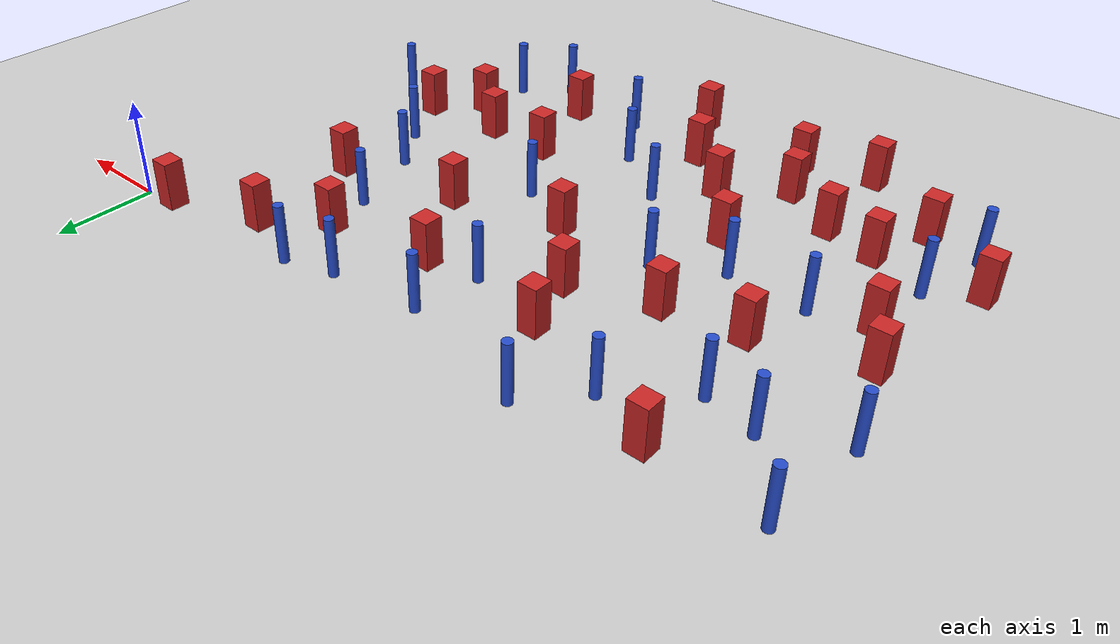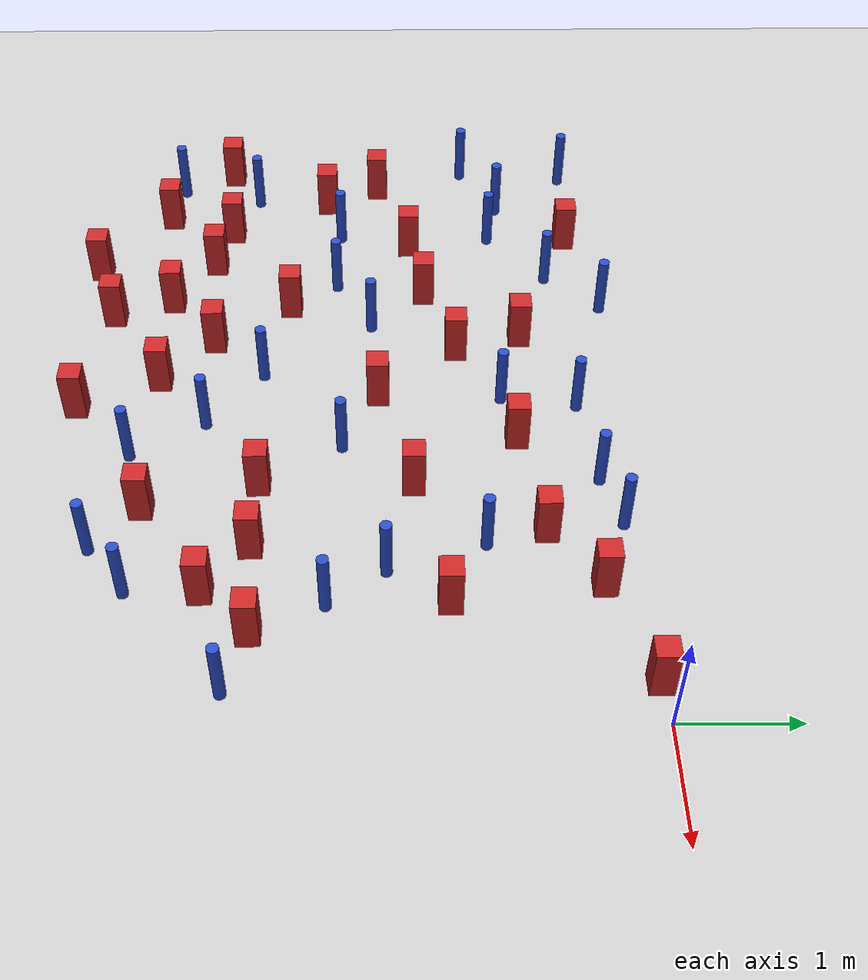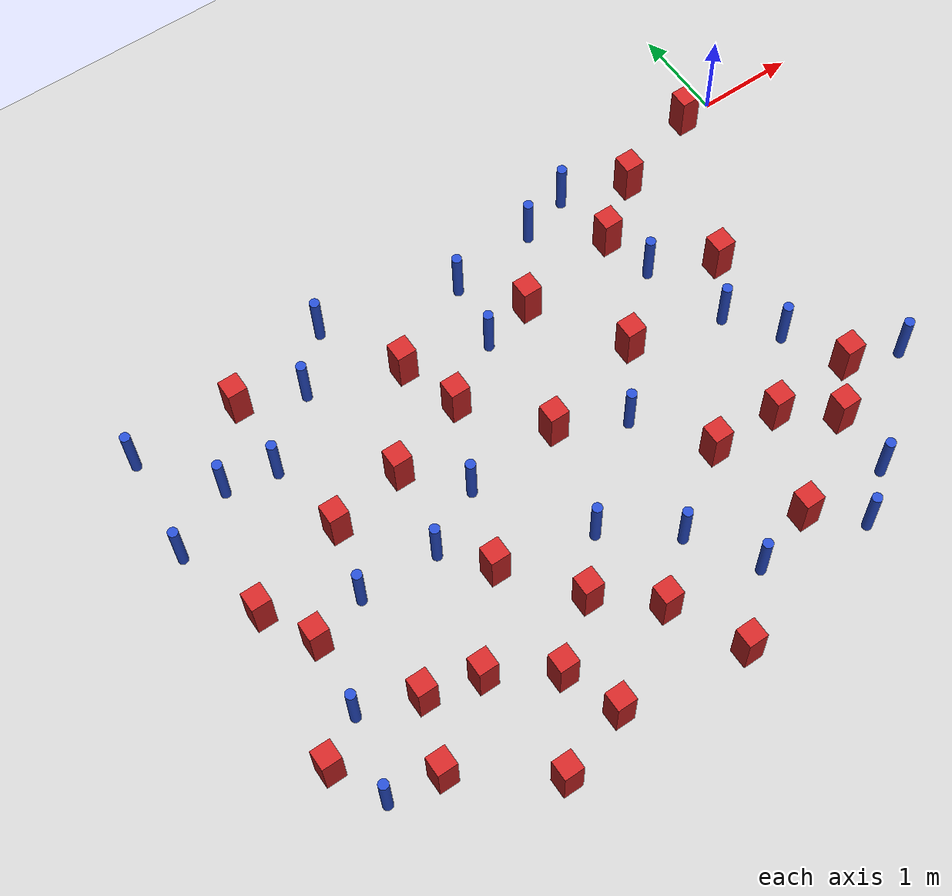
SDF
<sdf version="1.6">
 <world name="default">
  <model name="ground_plane">
   <static>1</static>
   <link name="link">
    <collision name="collision">
     <geometry><plane><normal>0 0 1</normal><size>100 100</size></plane></geometry>
     <surface><friction><ode><mu>100</mu><mu2>50</mu2></ode></friction></surface>
    </collision>
    <visual name="visual">
     <cast_shadows>0</cast_shadows>
     <geometry><plane><normal>0 0 1</normal><size>100 100</size></plane></geometry>
     <material>
      <ambient>1.0 1.0 1.0 1.0</ambient>
      <diffuse>0.8 0.8 0.8 1.0</diffuse>
      <specular>0.01 0.01 0.01 1.000000</specular>
     </material>
    </visual>
   </link>
  </model>
  <model name="square_post_obstacle4">
   <static>true</static>
   <pose>-0.353924351522 -0.0484012104252 8.22691968438e-08 7.2212513382e-06 -7.54495500217e-07 2.29674213826e-05</pose>
   <link name="link">
    <pose>0 0 0.25 0 -0 0</pose>
    <inertial>
     <mass>100</mass>
     <inertia>
      <ixx>0.166667</ixx>
      <ixy>0</ixy>
      <ixz>0</ixz>
      <iyy>0.166667</iyy>
      <iyz>0</iyz>
      <izz>0.166667</izz>
     </inertia>
    </inertial>
    <collision name="collision"><geometry><box><size>.2 .2 .5</size></box></geometry></collision>
    <visual name="visual">
     <geometry><box><size>.2 .2 .5</size></box></geometry>
     <material>
      <script><name>Gazebo/Red</name><uri>file://media/materials/scripts/gazebo.material</uri></script>
     </material>
    </visual>
   </link>
  </model>
  <model name="pole_obstacle7">
   <static>true</static>
   <pose>-5.84208865774 -1.11125612981 2.88873142074e-08 -9.90536689445e-09 4.60219948999e-07 -1.20965994956e-07</pose>
   <link name="link">
    <pose>0 0 0.3 0 -0 0</pose>
    <inertial>
     <mass>1</mass>
     <inertia><ixx>0.145833</ixx><ixy>0</ixy><ixz>0</ixz><iyy>0.145833</iyy><iyz>0</iyz><izz>0.125</izz></inertia>
    </inertial>
    <collision name="collision">
     <geometry><cylinder><radius>0.05</radius><length>.6</length></cylinder></geometry>
    </collision>
    <visual name="visual">
     <geometry><cylinder><radius>0.05</radius><length>.6</length></cylinder></geometry>
     <material>
      <script><name>Gazebo/Blue</name><uri>file://media/materials/scripts/gazebo.material</uri></script>
     </material>
    </visual>
   </link>
  </model>
  <model name="pole_obstacle10">
   <static>true</static>
   <pose>-1.11642473633 -2.62495609921 2.88873142074e-08 -9.90536689791e-09 4.6021994899e-07 -1.20965994959e-07</pose>
   <link name="link">
    <pose>0 0 0.3 0 -0 0</pose>
    <inertial>
     <mass>1</mass>
     <inertia><ixx>0.145833</ixx><ixy>0</ixy><ixz>0</ixz><iyy>0.145833</iyy><iyz>0</iyz><izz>0.125</izz></inertia>
    </inertial>
    <collision name="collision">
     <geometry><cylinder><radius>0.05</radius><length>.6</length></cylinder></geometry>
    </collision>
    <visual name="visual">
     <geometry><cylinder><radius>0.05</radius><length>.6</length></cylinder></geometry>
     <material>
      <script><name>Gazebo/Blue</name><uri>file://media/materials/scripts/gazebo.material</uri></script>
     </material>
    </visual>
   </link>
  </model>
  <model name="square_post_obstacle8">
   <static>true</static>
   <pose>-5.93874351744 -3.71497561347 8.22691968438e-08 7.2212513382e-06 -7.54495500217e-07 2.29674213826e-05</pose>
   <link name="link">
    <pose>0 0 0.25 0 -0 0</pose>
    <inertial>
     <mass>100</mass>
     <inertia>
      <ixx>0.166667</ixx>
      <ixy>0</ixy>
      <ixz>0</ixz>
      <iyy>0.166667</iyy>
      <iyz>0</iyz>
      <izz>0.166667</izz>
     </inertia>
    </inertial>
    <collision name="collision"><geometry><box><size>.2 .2 .5</size></box></geometry></collision>
    <visual name="visual">
     <geometry><box><size>.2 .2 .5</size></box></geometry>
     <material>
      <script><name>Gazebo/Red</name><uri>file://media/materials/scripts/gazebo.material</uri></script>
     </material>
    </visual>
   </link>
  </model>
  <model name="square_post_obstacle16">
   <static>true</static>
   <pose>-1.29657354316 -0.37013746028 8.22691968438e-08 7.2212513382e-06 -7.54495500217e-07 2.29674213826e-05</pose>
   <link name="link">
    <pose>0 0 0.25 0 -0 0</pose>
    <inertial>
     <mass>100</mass>
     <inertia>
      <ixx>0.166667</ixx>
      <ixy>0</ixy>
      <ixz>0</ixz>
      <iyy>0.166667</iyy>
      <iyz>0</iyz>
      <izz>0.166667</izz>
     </inertia>
    </inertial>
    <collision name="collision"><geometry><box><size>.2 .2 .5</size></box></geometry></collision>
    <visual name="visual">
     <geometry><box><size>.2 .2 .5</size></box></geometry>
     <material>
      <script><name>Gazebo/Red</name><uri>file://media/materials/scripts/gazebo.material</uri></script>
     </material>
    </visual>
   </link>
  </model>
  <model name="square_post_obstacle17">
   <static>true</static>
   <pose>-3.71975612053 -4.23128856117 8.22691968438e-08 7.2212513382e-06 -7.54495500217e-07 2.29674213826e-05</pose>
   <link name="link">
    <pose>0 0 0.25 0 -0 0</pose>
    <inertial>
     <mass>100</mass>
     <inertia>
      <ixx>0.166667</ixx>
      <ixy>0</ixy>
      <ixz>0</ixz>
      <iyy>0.166667</iyy>
      <iyz>0</iyz>
      <izz>0.166667</izz>
     </inertia>
    </inertial>
    <collision name="collision"><geometry><box><size>.2 .2 .5</size></box></geometry></collision>
    <visual name="visual">
     <geometry><box><size>.2 .2 .5</size></box></geometry>
     <material>
      <script><name>Gazebo/Red</name><uri>file://media/materials/scripts/gazebo.material</uri></script>
     </material>
    </visual>
   </link>
  </model>
  <model name="square_post_obstacle20">
   <static>true</static>
   <pose>-6.42483003444 -2.76336271991 8.22691968438e-08 7.2212513382e-06 -7.54495500217e-07 2.29674213826e-05</pose>
   <link name="link">
    <pose>0 0 0.25 0 -0 0</pose>
    <inertial>
     <mass>100</mass>
     <inertia>
      <ixx>0.166667</ixx>
      <ixy>0</ixy>
      <ixz>0</ixz>
      <iyy>0.166667</iyy>
      <iyz>0</iyz>
      <izz>0.166667</izz>
     </inertia>
    </inertial>
    <collision name="collision"><geometry><box><size>.2 .2 .5</size></box></geometry></collision>
    <visual name="visual">
     <geometry><box><size>.2 .2 .5</size></box></geometry>
     <material>
      <script><name>Gazebo/Red</name><uri>file://media/materials/scripts/gazebo.material</uri></script>
     </material>
    </visual>
   </link>
  </model>
  <model name="square_post_obstacle26">
   <static>true</static>
   <pose>-4.82726771873 -4.22227298662 8.22691968438e-08 7.2212513382e-06 -7.54495500217e-07 2.29674213826e-05</pose>
   <link name="link">
    <pose>0 0 0.25 0 -0 0</pose>
    <inertial>
     <mass>100</mass>
     <inertia>
      <ixx>0.166667</ixx>
      <ixy>0</ixy>
      <ixz>0</ixz>
      <iyy>0.166667</iyy>
      <iyz>0</iyz>
      <izz>0.166667</izz>
     </inertia>
    </inertial>
    <collision name="collision"><geometry><box><size>.2 .2 .5</size></box></geometry></collision>
    <visual name="visual">
     <geometry><box><size>.2 .2 .5</size></box></geometry>
     <material>
      <script><name>Gazebo/Red</name><uri>file://media/materials/scripts/gazebo.material</uri></script>
     </material>
    </visual>
   </link>
  </model>
  <model name="pole_obstacle45">
   <static>true</static>
   <pose>-2.77632483349 -4.4089246093 2.88873142074e-08 -9.90536689859e-09 4.60219948989e-07 -1.20965994961e-07</pose>
   <link name="link">
    <pose>0 0 0.3 0 -0 0</pose>
    <inertial>
     <mass>1</mass>
     <inertia><ixx>0.145833</ixx><ixy>0</ixy><ixz>0</ixz><iyy>0.145833</iyy><iyz>0</iyz><izz>0.125</izz></inertia>
    </inertial>
    <collision name="collision">
     <geometry><cylinder><radius>0.05</radius><length>.6</length></cylinder></geometry>
    </collision>
    <visual name="visual">
     <geometry><cylinder><radius>0.05</radius><length>.6</length></cylinder></geometry>
     <material>
      <script><name>Gazebo/Blue</name><uri>file://media/materials/scripts/gazebo.material</uri></script>
     </material>
    </visual>
   </link>
  </model>
  <model name="square_post_obstacle38">
   <static>true</static>
   <pose>-2.40083203165 -1.90359763674 8.22691968438e-08 7.22125133819e-06 -7.54495500217e-07 2.29674213826e-05</pose>
   <link name="link">
    <pose>0 0 0.25 0 -0 0</pose>
    <inertial>
     <mass>100</mass>
     <inertia>
      <ixx>0.166667</ixx>
      <ixy>0</ixy>
      <ixz>0</ixz>
      <iyy>0.166667</iyy>
      <iyz>0</iyz>
      <izz>0.166667</izz>
     </inertia>
    </inertial>
    <collision name="collision"><geometry><box><size>.2 .2 .5</size></box></geometry></collision>
    <visual name="visual">
     <geometry><box><size>.2 .2 .5</size></box></geometry>
     <material>
      <script><name>Gazebo/Red</name><uri>file://media/materials/scripts/gazebo.material</uri></script>
     </material>
    </visual>
   </link>
  </model>
  <model name="square_post_obstacle42">
   <static>true</static>
   <pose>-2.40776329076 -3.24105631658 8.22691968438e-08 7.2212513382e-06 -7.54495500217e-07 2.29674213826e-05</pose>
   <link name="link">
    <pose>0 0 0.25 0 -0 0</pose>
    <inertial>
     <mass>100</mass>
     <inertia>
      <ixx>0.166667</ixx>
      <ixy>0</ixy>
      <ixz>0</ixz>
      <iyy>0.166667</iyy>
      <iyz>0</iyz>
      <izz>0.166667</izz>
     </inertia>
    </inertial>
    <collision name="collision"><geometry><box><size>.2 .2 .5</size></box></geometry></collision>
    <visual name="visual">
     <geometry><box><size>.2 .2 .5</size></box></geometry>
     <material>
      <script><name>Gazebo/Red</name><uri>file://media/materials/scripts/gazebo.material</uri></script>
     </material>
    </visual>
   </link>
  </model>
  <model name="square_post_obstacle46">
   <static>true</static>
   <pose>-6.93474929839 -3.78646989536 8.22691968438e-08 7.2212513382e-06 -7.54495500217e-07 2.29674213826e-05</pose>
   <link name="link">
    <pose>0 0 0.25 0 -0 0</pose>
    <inertial>
     <mass>100</mass>
     <inertia>
      <ixx>0.166667</ixx>
      <ixy>0</ixy>
      <ixz>0</ixz>
      <iyy>0.166667</iyy>
      <iyz>0</iyz>
      <izz>0.166667</izz>
     </inertia>
    </inertial>
    <collision name="collision"><geometry><box><size>.2 .2 .5</size></box></geometry></collision>
    <visual name="visual">
     <geometry><box><size>.2 .2 .5</size></box></geometry>
     <material>
      <script><name>Gazebo/Red</name><uri>file://media/materials/scripts/gazebo.material</uri></script>
     </material>
    </visual>
   </link>
  </model>
  <model name="pole_obstacle64">
   <static>true</static>
   <pose>-3.16671147256 -3.76745378342 2.88873142074e-08 -9.90536690232e-09 4.6021994898e-07 -1.20965994968e-07</pose>
   <link name="link">
    <pose>0 0 0.3 0 -0 0</pose>
    <inertial>
     <mass>1</mass>
     <inertia><ixx>0.145833</ixx><ixy>0</ixy><ixz>0</ixz><iyy>0.145833</iyy><iyz>0</iyz><izz>0.125</izz></inertia>
    </inertial>
    <collision name="collision">
     <geometry><cylinder><radius>0.05</radius><length>.6</length></cylinder></geometry>
    </collision>
    <visual name="visual">
     <geometry><cylinder><radius>0.05</radius><length>.6</length></cylinder></geometry>
     <material>
      <script><name>Gazebo/Blue</name><uri>file://media/materials/scripts/gazebo.material</uri></script>
     </material>
    </visual>
   </link>
  </model>
  <model name="square_post_obstacle58">
   <static>true</static>
   <pose>-5.40928146201 -3.85195314109 8.22691968438e-08 7.2212513382e-06 -7.54495500217e-07 2.29674213826e-05</pose>
   <link name="link">
    <pose>0 0 0.25 0 -0 0</pose>
    <inertial>
     <mass>100</mass>
     <inertia>
      <ixx>0.166667</ixx>
      <ixy>0</ixy>
      <ixz>0</ixz>
      <iyy>0.166667</iyy>
      <iyz>0</iyz>
      <izz>0.166667</izz>
     </inertia>
    </inertial>
    <collision name="collision"><geometry><box><size>.2 .2 .5</size></box></geometry></collision>
    <visual name="visual">
     <geometry><box><size>.2 .2 .5</size></box></geometry>
     <material>
      <script><name>Gazebo/Red</name><uri>file://media/materials/scripts/gazebo.material</uri></script>
     </material>
    </visual>
   </link>
  </model>
  <model name="pole_obstacle75">
   <static>true</static>
   <pose>-2.86983667224 -2.53253403333 2.88873142074e-08 -9.90536690232e-09 4.6021994898e-07 -1.20965994968e-07</pose>
   <link name="link">
    <pose>0 0 0.3 0 -0 0</pose>
    <inertial>
     <mass>1</mass>
     <inertia><ixx>0.145833</ixx><ixy>0</ixy><ixz>0</ixz><iyy>0.145833</iyy><iyz>0</iyz><izz>0.125</izz></inertia>
    </inertial>
    <collision name="collision">
     <geometry><cylinder><radius>0.05</radius><length>.6</length></cylinder></geometry>
    </collision>
    <visual name="visual">
     <geometry><cylinder><radius>0.05</radius><length>.6</length></cylinder></geometry>
     <material>
      <script><name>Gazebo/Blue</name><uri>file://media/materials/scripts/gazebo.material</uri></script>
     </material>
    </visual>
   </link>
  </model>
  <model name="square_post_obstacle68">
   <static>true</static>
   <pose>-5.33740428314 -5.00084969941 8.22691968438e-08 7.22125133819e-06 -7.54495500217e-07 2.29674213826e-05</pose>
   <link name="link">
    <pose>0 0 0.25 0 -0 0</pose>
    <inertial>
     <mass>100</mass>
     <inertia>
      <ixx>0.166667</ixx>
      <ixy>0</ixy>
      <ixz>0</ixz>
      <iyy>0.166667</iyy>
      <iyz>0</iyz>
      <izz>0.166667</izz>
     </inertia>
    </inertial>
    <collision name="collision"><geometry><box><size>.2 .2 .5</size></box></geometry></collision>
    <visual name="visual">
     <geometry><box><size>.2 .2 .5</size></box></geometry>
     <material>
      <script><name>Gazebo/Red</name><uri>file://media/materials/scripts/gazebo.material</uri></script>
     </material>
    </visual>
   </link>
  </model>
  <model name="pole_obstacle85">
   <static>true</static>
   <pose>-1.45981812008 -2.13649856728 2.88873142074e-08 -9.90536689791e-09 4.6021994899e-07 -1.20965994959e-07</pose>
   <link name="link">
    <pose>0 0 0.3 0 -0 0</pose>
    <inertial>
     <mass>1</mass>
     <inertia><ixx>0.145833</ixx><ixy>0</ixy><ixz>0</ixz><iyy>0.145833</iyy><iyz>0</iyz><izz>0.125</izz></inertia>
    </inertial>
    <collision name="collision">
     <geometry><cylinder><radius>0.05</radius><length>.6</length></cylinder></geometry>
    </collision>
    <visual name="visual">
     <geometry><cylinder><radius>0.05</radius><length>.6</length></cylinder></geometry>
     <material>
      <script><name>Gazebo/Blue</name><uri>file://media/materials/scripts/gazebo.material</uri></script>
     </material>
    </visual>
   </link>
  </model>
  <model name="pole_obstacle90">
   <static>true</static>
   <pose>-1.25688502942 -4.26383190639 2.88873142074e-08 -9.90536689852e-09 4.60219948989e-07 -1.2096599496e-07</pose>
   <link name="link">
    <pose>0 0 0.3 0 -0 0</pose>
    <inertial>
     <mass>1</mass>
     <inertia><ixx>0.145833</ixx><ixy>0</ixy><ixz>0</ixz><iyy>0.145833</iyy><iyz>0</iyz><izz>0.125</izz></inertia>
    </inertial>
    <collision name="collision">
     <geometry><cylinder><radius>0.05</radius><length>.6</length></cylinder></geometry>
    </collision>
    <visual name="visual">
     <geometry><cylinder><radius>0.05</radius><length>.6</length></cylinder></geometry>
     <material>
      <script><name>Gazebo/Blue</name><uri>file://media/materials/scripts/gazebo.material</uri></script>
     </material>
    </visual>
   </link>
  </model>
  <model name="square_post_obstacle82">
   <static>true</static>
   <pose>-1.12843798627 -1.62352066586 8.22691968438e-08 7.2212513382e-06 -7.54495500217e-07 2.29674213826e-05</pose>
   <link name="link">
    <pose>0 0 0.25 0 -0 0</pose>
    <inertial>
     <mass>100</mass>
     <inertia>
      <ixx>0.166667</ixx>
      <ixy>0</ixy>
      <ixz>0</ixz>
      <iyy>0.166667</iyy>
      <iyz>0</iyz>
      <izz>0.166667</izz>
     </inertia>
    </inertial>
    <collision name="collision"><geometry><box><size>.2 .2 .5</size></box></geometry></collision>
    <visual name="visual">
     <geometry><box><size>.2 .2 .5</size></box></geometry>
     <material>
      <script><name>Gazebo/Red</name><uri>file://media/materials/scripts/gazebo.material</uri></script>
     </material>
    </visual>
   </link>
  </model>
  <model name="square_post_obstacle89">
   <static>true</static>
   <pose>-1.23962064549 -3.63579727725 8.22691968438e-08 7.2212513382e-06 -7.54495500217e-07 2.29674213826e-05</pose>
   <link name="link">
    <pose>0 0 0.25 0 -0 0</pose>
    <inertial>
     <mass>100</mass>
     <inertia>
      <ixx>0.166667</ixx>
      <ixy>0</ixy>
      <ixz>0</ixz>
      <iyy>0.166667</iyy>
      <iyz>0</iyz>
      <izz>0.166667</izz>
     </inertia>
    </inertial>
    <collision name="collision"><geometry><box><size>.2 .2 .5</size></box></geometry></collision>
    <visual name="visual">
     <geometry><box><size>.2 .2 .5</size></box></geometry>
     <material>
      <script><name>Gazebo/Red</name><uri>file://media/materials/scripts/gazebo.material</uri></script>
     </material>
    </visual>
   </link>
  </model>
  <model name="pole_obstacle105">
   <static>true</static>
   <pose>-1.95211503798 -0.137079951747 2.88873142074e-08 -9.90536689886e-09 4.60219948988e-07 -1.20965994961e-07</pose>
   <link name="link">
    <pose>0 0 0.3 0 -0 0</pose>
    <inertial>
     <mass>1</mass>
     <inertia><ixx>0.145833</ixx><ixy>0</ixy><ixz>0</ixz><iyy>0.145833</iyy><iyz>0</iyz><izz>0.125</izz></inertia>
    </inertial>
    <collision name="collision">
     <geometry><cylinder><radius>0.05</radius><length>.6</length></cylinder></geometry>
    </collision>
    <visual name="visual">
     <geometry><cylinder><radius>0.05</radius><length>.6</length></cylinder></geometry>
     <material>
      <script><name>Gazebo/Blue</name><uri>file://media/materials/scripts/gazebo.material</uri></script>
     </material>
    </visual>
   </link>
  </model>
  <model name="pole_obstacle113">
   <static>true</static>
   <pose>-3.79943890474 -3.28116938728 2.88873142074e-08 -9.90536690232e-09 4.6021994898e-07 -1.20965994968e-07</pose>
   <link name="link">
    <pose>0 0 0.3 0 -0 0</pose>
    <inertial>
     <mass>1</mass>
     <inertia><ixx>0.145833</ixx><ixy>0</ixy><ixz>0</ixz><iyy>0.145833</iyy><iyz>0</iyz><izz>0.125</izz></inertia>
    </inertial>
    <collision name="collision">
     <geometry><cylinder><radius>0.05</radius><length>.6</length></cylinder></geometry>
    </collision>
    <visual name="visual">
     <geometry><cylinder><radius>0.05</radius><length>.6</length></cylinder></geometry>
     <material>
      <script><name>Gazebo/Blue</name><uri>file://media/materials/scripts/gazebo.material</uri></script>
     </material>
    </visual>
   </link>
  </model>
  <model name="square_post_obstacle111">
   <static>true</static>
   <pose>-2.95153687948 -0.981113258995 8.22691968438e-08 7.2212513382e-06 -7.54495500217e-07 2.29674213826e-05</pose>
   <link name="link">
    <pose>0 0 0.25 0 -0 0</pose>
    <inertial>
     <mass>100</mass>
     <inertia>
      <ixx>0.166667</ixx>
      <ixy>0</ixy>
      <ixz>0</ixz>
      <iyy>0.166667</iyy>
      <iyz>0</iyz>
      <izz>0.166667</izz>
     </inertia>
    </inertial>
    <collision name="collision"><geometry><box><size>.2 .2 .5</size></box></geometry></collision>
    <visual name="visual">
     <geometry><box><size>.2 .2 .5</size></box></geometry>
     <material>
      <script><name>Gazebo/Red</name><uri>file://media/materials/scripts/gazebo.material</uri></script>
     </material>
    </visual>
   </link>
  </model>
  <model name="square_post_obstacle117">
   <static>true</static>
   <pose>-0.831896689434 -3.21982725169 8.22691968438e-08 7.2212513382e-06 -7.54495500217e-07 2.29674213826e-05</pose>
   <link name="link">
    <pose>0 0 0.25 0 -0 0</pose>
    <inertial>
     <mass>100</mass>
     <inertia>
      <ixx>0.166667</ixx>
      <ixy>0</ixy>
      <ixz>0</ixz>
      <iyy>0.166667</iyy>
      <iyz>0</iyz>
      <izz>0.166667</izz>
     </inertia>
    </inertial>
    <collision name="collision"><geometry><box><size>.2 .2 .5</size></box></geometry></collision>
    <visual name="visual">
     <geometry><box><size>.2 .2 .5</size></box></geometry>
     <material>
      <script><name>Gazebo/Red</name><uri>file://media/materials/scripts/gazebo.material</uri></script>
     </material>
    </visual>
   </link>
  </model>
  <model name="pole_obstacle127">
   <static>true</static>
   <pose>-6.98928567473 -1.35368398232 2.88873142074e-08 -9.90536689445e-09 4.60219948999e-07 -1.20965994956e-07</pose>
   <link name="link">
    <pose>0 0 0.3 0 -0 0</pose>
    <inertial>
     <mass>1</mass>
     <inertia><ixx>0.145833</ixx><ixy>0</ixy><ixz>0</ixz><iyy>0.145833</iyy><iyz>0</iyz><izz>0.125</izz></inertia>
    </inertial>
    <collision name="collision">
     <geometry><cylinder><radius>0.05</radius><length>.6</length></cylinder></geometry>
    </collision>
    <visual name="visual">
     <geometry><cylinder><radius>0.05</radius><length>.6</length></cylinder></geometry>
     <material>
      <script><name>Gazebo/Blue</name><uri>file://media/materials/scripts/gazebo.material</uri></script>
     </material>
    </visual>
   </link>
  </model>
  <model name="square_post_obstacle126">
   <static>true</static>
   <pose>-1.71155157956 -3.26330077604 8.22691968438e-08 7.2212513382e-06 -7.54495500217e-07 2.29674213826e-05</pose>
   <link name="link">
    <pose>0 0 0.25 0 -0 0</pose>
    <inertial>
     <mass>100</mass>
     <inertia>
      <ixx>0.166667</ixx>
      <ixy>0</ixy>
      <ixz>0</ixz>
      <iyy>0.166667</iyy>
      <iyz>0</iyz>
      <izz>0.166667</izz>
     </inertia>
    </inertial>
    <collision name="collision"><geometry><box><size>.2 .2 .5</size></box></geometry></collision>
    <visual name="visual">
     <geometry><box><size>.2 .2 .5</size></box></geometry>
     <material>
      <script><name>Gazebo/Red</name><uri>file://media/materials/scripts/gazebo.material</uri></script>
     </material>
    </visual>
   </link>
  </model>
  <model name="pole_obstacle132">
   <static>true</static>
   <pose>-6.50206991924 -3.49347418676 2.88873142074e-08 -9.90536690245e-09 4.6021994898e-07 -1.20965994966e-07</pose>
   <link name="link">
    <pose>0 0 0.3 0 -0 0</pose>
    <inertial>
     <mass>1</mass>
     <inertia><ixx>0.145833</ixx><ixy>0</ixy><ixz>0</ixz><iyy>0.145833</iyy><iyz>0</iyz><izz>0.125</izz></inertia>
    </inertial>
    <collision name="collision">
     <geometry><cylinder><radius>0.05</radius><length>.6</length></cylinder></geometry>
    </collision>
    <visual name="visual">
     <geometry><cylinder><radius>0.05</radius><length>.6</length></cylinder></geometry>
     <material>
      <script><name>Gazebo/Blue</name><uri>file://media/materials/scripts/gazebo.material</uri></script>
     </material>
    </visual>
   </link>
  </model>
  <model name="pole_obstacle135">
   <static>true</static>
   <pose>-3.47546707701 -1.09512702284 2.88873142074e-08 -9.90536689395e-09 4.60219949e-07 -1.20965994953e-07</pose>
   <link name="link">
    <pose>0 0 0.3 0 -0 0</pose>
    <inertial>
     <mass>1</mass>
     <inertia><ixx>0.145833</ixx><ixy>0</ixy><ixz>0</ixz><iyy>0.145833</iyy><iyz>0</iyz><izz>0.125</izz></inertia>
    </inertial>
    <collision name="collision">
     <geometry><cylinder><radius>0.05</radius><length>.6</length></cylinder></geometry>
    </collision>
    <visual name="visual">
     <geometry><cylinder><radius>0.05</radius><length>.6</length></cylinder></geometry>
     <material>
      <script><name>Gazebo/Blue</name><uri>file://media/materials/scripts/gazebo.material</uri></script>
     </material>
    </visual>
   </link>
  </model>
  <model name="pole_obstacle138">
   <static>true</static>
   <pose>-1.73772776098 -1.30413992142 2.88873142074e-08 -9.90536689672e-09 4.60219948993e-07 -1.20965994959e-07</pose>
   <link name="link">
    <pose>0 0 0.3 0 -0 0</pose>
    <inertial>
     <mass>1</mass>
     <inertia><ixx>0.145833</ixx><ixy>0</ixy><ixz>0</ixz><iyy>0.145833</iyy><iyz>0</iyz><izz>0.125</izz></inertia>
    </inertial>
    <collision name="collision">
     <geometry><cylinder><radius>0.05</radius><length>.6</length></cylinder></geometry>
    </collision>
    <visual name="visual">
     <geometry><cylinder><radius>0.05</radius><length>.6</length></cylinder></geometry>
     <material>
      <script><name>Gazebo/Blue</name><uri>file://media/materials/scripts/gazebo.material</uri></script>
     </material>
    </visual>
   </link>
  </model>
  <model name="square_post_obstacle137">
   <static>true</static>
   <pose>-4.75141277433 -3.06998402391 8.22691968438e-08 7.2212513382e-06 -7.54495500217e-07 2.29674213826e-05</pose>
   <link name="link">
    <pose>0 0 0.25 0 -0 0</pose>
    <inertial>
     <mass>100</mass>
     <inertia>
      <ixx>0.166667</ixx>
      <ixy>0</ixy>
      <ixz>0</ixz>
      <iyy>0.166667</iyy>
      <iyz>0</iyz>
      <izz>0.166667</izz>
     </inertia>
    </inertial>
    <collision name="collision"><geometry><box><size>.2 .2 .5</size></box></geometry></collision>
    <visual name="visual">
     <geometry><box><size>.2 .2 .5</size></box></geometry>
     <material>
      <script><name>Gazebo/Red</name><uri>file://media/materials/scripts/gazebo.material</uri></script>
     </material>
    </visual>
   </link>
  </model>
  <model name="pole_obstacle142">
   <static>true</static>
   <pose>-6.34135345299 -1.00313162944 2.88873142074e-08 -9.90536689582e-09 4.60219948995e-07 -1.20965994957e-07</pose>
   <link name="link">
    <pose>0 0 0.3 0 -0 0</pose>
    <inertial>
     <mass>1</mass>
     <inertia><ixx>0.145833</ixx><ixy>0</ixy><ixz>0</ixz><iyy>0.145833</iyy><iyz>0</iyz><izz>0.125</izz></inertia>
    </inertial>
    <collision name="collision">
     <geometry><cylinder><radius>0.05</radius><length>.6</length></cylinder></geometry>
    </collision>
    <visual name="visual">
     <geometry><cylinder><radius>0.05</radius><length>.6</length></cylinder></geometry>
     <material>
      <script><name>Gazebo/Blue</name><uri>file://media/materials/scripts/gazebo.material</uri></script>
     </material>
    </visual>
   </link>
  </model>
  <model name="square_post_obstacle143">
   <static>true</static>
   <pose>-5.69874122217 -1.92316323455 8.22691968438e-08 7.2212513382e-06 -7.54495500217e-07 2.29674213826e-05</pose>
   <link name="link">
    <pose>0 0 0.25 0 -0 0</pose>
    <inertial>
     <mass>100</mass>
     <inertia>
      <ixx>0.166667</ixx>
      <ixy>0</ixy>
      <ixz>0</ixz>
      <iyy>0.166667</iyy>
      <iyz>0</iyz>
      <izz>0.166667</izz>
     </inertia>
    </inertial>
    <collision name="collision"><geometry><box><size>.2 .2 .5</size></box></geometry></collision>
    <visual name="visual">
     <geometry><box><size>.2 .2 .5</size></box></geometry>
     <material>
      <script><name>Gazebo/Red</name><uri>file://media/materials/scripts/gazebo.material</uri></script>
     </material>
    </visual>
   </link>
  </model>
  <model name="pole_obstacle151">
   <static>true</static>
   <pose>-3.37104035298 -0.410701907593 2.88873142074e-08 -9.90536689307e-09 4.60219949002e-07 -1.20965994954e-07</pose>
   <link name="link">
    <pose>0 0 0.3 0 -0 0</pose>
    <inertial>
     <mass>1</mass>
     <inertia><ixx>0.145833</ixx><ixy>0</ixy><ixz>0</ixz><iyy>0.145833</iyy><iyz>0</iyz><izz>0.125</izz></inertia>
    </inertial>
    <collision name="collision">
     <geometry><cylinder><radius>0.05</radius><length>.6</length></cylinder></geometry>
    </collision>
    <visual name="visual">
     <geometry><cylinder><radius>0.05</radius><length>.6</length></cylinder></geometry>
     <material>
      <script><name>Gazebo/Blue</name><uri>file://media/materials/scripts/gazebo.material</uri></script>
     </material>
    </visual>
   </link>
  </model>
  <model name="square_post_obstacle149">
   <static>true</static>
   <pose>-4.93916399528 -1.78258566083 8.22691968438e-08 7.2212513382e-06 -7.54495500217e-07 2.29674213826e-05</pose>
   <link name="link">
    <pose>0 0 0.25 0 -0 0</pose>
    <inertial>
     <mass>100</mass>
     <inertia>
      <ixx>0.166667</ixx>
      <ixy>0</ixy>
      <ixz>0</ixz>
      <iyy>0.166667</iyy>
      <iyz>0</iyz>
      <izz>0.166667</izz>
     </inertia>
    </inertial>
    <collision name="collision"><geometry><box><size>.2 .2 .5</size></box></geometry></collision>
    <visual name="visual">
     <geometry><box><size>.2 .2 .5</size></box></geometry>
     <material>
      <script><name>Gazebo/Red</name><uri>file://media/materials/scripts/gazebo.material</uri></script>
     </material>
    </visual>
   </link>
  </model>
  <model name="pole_obstacle159">
   <static>true</static>
   <pose>-6.68935825552 -4.29834983327 2.88873142074e-08 -9.90536690842e-09 4.60219948965e-07 -1.20965994976e-07</pose>
   <link name="link">
    <pose>0 0 0.3 0 -0 0</pose>
    <inertial>
     <mass>1</mass>
     <inertia><ixx>0.145833</ixx><ixy>0</ixy><ixz>0</ixz><iyy>0.145833</iyy><iyz>0</iyz><izz>0.125</izz></inertia>
    </inertial>
    <collision name="collision">
     <geometry><cylinder><radius>0.05</radius><length>.6</length></cylinder></geometry>
    </collision>
    <visual name="visual">
     <geometry><cylinder><radius>0.05</radius><length>.6</length></cylinder></geometry>
     <material>
      <script><name>Gazebo/Blue</name><uri>file://media/materials/scripts/gazebo.material</uri></script>
     </material>
    </visual>
   </link>
  </model>
  <model name="square_post_obstacle154">
   <static>true</static>
   <pose>-4.2377571288 -3.76745200168 8.22691968438e-08 7.2212513382e-06 -7.54495500217e-07 2.29674213826e-05</pose>
   <link name="link">
    <pose>0 0 0.25 0 -0 0</pose>
    <inertial>
     <mass>100</mass>
     <inertia>
      <ixx>0.166667</ixx>
      <ixy>0</ixy>
      <ixz>0</ixz>
      <iyy>0.166667</iyy>
      <iyz>0</iyz>
      <izz>0.166667</izz>
     </inertia>
    </inertial>
    <collision name="collision"><geometry><box><size>.2 .2 .5</size></box></geometry></collision>
    <visual name="visual">
     <geometry><box><size>.2 .2 .5</size></box></geometry>
     <material>
      <script><name>Gazebo/Red</name><uri>file://media/materials/scripts/gazebo.material</uri></script>
     </material>
    </visual>
   </link>
  </model>
  <model name="square_post_obstacle157">
   <static>true</static>
   <pose>-1.86503671847 -0.797672922226 8.22691968438e-08 7.2212513382e-06 -7.54495500217e-07 2.29674213826e-05</pose>
   <link name="link">
    <pose>0 0 0.25 0 -0 0</pose>
    <inertial>
     <mass>100</mass>
     <inertia>
      <ixx>0.166667</ixx>
      <ixy>0</ixy>
      <ixz>0</ixz>
      <iyy>0.166667</iyy>
      <iyz>0</iyz>
      <izz>0.166667</izz>
     </inertia>
    </inertial>
    <collision name="collision"><geometry><box><size>.2 .2 .5</size></box></geometry></collision>
    <visual name="visual">
     <geometry><box><size>.2 .2 .5</size></box></geometry>
     <material>
      <script><name>Gazebo/Red</name><uri>file://media/materials/scripts/gazebo.material</uri></script>
     </material>
    </visual>
   </link>
  </model>
  <model name="square_post_obstacle159">
   <static>true</static>
   <pose>-3.37071268865 -4.95535061826 8.22691968438e-08 7.2212513382e-06 -7.54495500217e-07 2.29674213826e-05</pose>
   <link name="link">
    <pose>0 0 0.25 0 -0 0</pose>
    <inertial>
     <mass>100</mass>
     <inertia>
      <ixx>0.166667</ixx>
      <ixy>0</ixy>
      <ixz>0</ixz>
      <iyy>0.166667</iyy>
      <iyz>0</iyz>
      <izz>0.166667</izz>
     </inertia>
    </inertial>
    <collision name="collision"><geometry><box><size>.2 .2 .5</size></box></geometry></collision>
    <visual name="visual">
     <geometry><box><size>.2 .2 .5</size></box></geometry>
     <material>
      <script><name>Gazebo/Red</name><uri>file://media/materials/scripts/gazebo.material</uri></script>
     </material>
    </visual>
   </link>
  </model>
  <model name="square_post_obstacle166">
   <static>true</static>
   <pose>-4.30605455772 -0.880215533614 8.22691968438e-08 7.2212513382e-06 -7.54495500217e-07 2.29674213826e-05</pose>
   <link name="link">
    <pose>0 0 0.25 0 -0 0</pose>
    <inertial>
     <mass>100</mass>
     <inertia>
      <ixx>0.166667</ixx>
      <ixy>0</ixy>
      <ixz>0</ixz>
      <iyy>0.166667</iyy>
      <iyz>0</iyz>
      <izz>0.166667</izz>
     </inertia>
    </inertial>
    <collision name="collision"><geometry><box><size>.2 .2 .5</size></box></geometry></collision>
    <visual name="visual">
     <geometry><box><size>.2 .2 .5</size></box></geometry>
     <material>
      <script><name>Gazebo/Red</name><uri>file://media/materials/scripts/gazebo.material</uri></script>
     </material>
    </visual>
   </link>
  </model>
  <model name="pole_obstacle174">
   <static>true</static>
   <pose>-5.1979375374 -0.567098450867 2.88873142074e-08 -9.90536689837e-09 4.60219948989e-07 -1.2096599496e-07</pose>
   <link name="link">
    <pose>0 0 0.3 0 -0 0</pose>
    <inertial>
     <mass>1</mass>
     <inertia><ixx>0.145833</ixx><ixy>0</ixy><ixz>0</ixz><iyy>0.145833</iyy><iyz>0</iyz><izz>0.125</izz></inertia>
    </inertial>
    <collision name="collision">
     <geometry><cylinder><radius>0.05</radius><length>.6</length></cylinder></geometry>
    </collision>
    <visual name="visual">
     <geometry><cylinder><radius>0.05</radius><length>.6</length></cylinder></geometry>
     <material>
      <script><name>Gazebo/Blue</name><uri>file://media/materials/scripts/gazebo.material</uri></script>
     </material>
    </visual>
   </link>
  </model>
  <model name="square_post_obstacle175">
   <static>true</static>
   <pose>-3.51107169577 -2.21752344623 8.22691968438e-08 7.2212513382e-06 -7.54495500217e-07 2.29674213826e-05</pose>
   <link name="link">
    <pose>0 0 0.25 0 -0 0</pose>
    <inertial>
     <mass>100</mass>
     <inertia>
      <ixx>0.166667</ixx>
      <ixy>0</ixy>
      <ixz>0</ixz>
      <iyy>0.166667</iyy>
      <iyz>0</iyz>
      <izz>0.166667</izz>
     </inertia>
    </inertial>
    <collision name="collision"><geometry><box><size>.2 .2 .5</size></box></geometry></collision>
    <visual name="visual">
     <geometry><box><size>.2 .2 .5</size></box></geometry>
     <material>
      <script><name>Gazebo/Red</name><uri>file://media/materials/scripts/gazebo.material</uri></script>
     </material>
    </visual>
   </link>
  </model>
  <model name="pole_obstacle182">
   <static>true</static>
   <pose>-1.709177087 -4.61316428178 2.88873142074e-08 -9.90536689852e-09 4.60219948989e-07 -1.2096599496e-07</pose>
   <link name="link">
    <pose>0 0 0.3 0 -0 0</pose>
    <inertial>
     <mass>1</mass>
     <inertia><ixx>0.145833</ixx><ixy>0</ixy><ixz>0</ixz><iyy>0.145833</iyy><iyz>0</iyz><izz>0.125</izz></inertia>
    </inertial>
    <collision name="collision">
     <geometry><cylinder><radius>0.05</radius><length>.6</length></cylinder></geometry>
    </collision>
    <visual name="visual">
     <geometry><cylinder><radius>0.05</radius><length>.6</length></cylinder></geometry>
     <material>
      <script><name>Gazebo/Blue</name><uri>file://media/materials/scripts/gazebo.material</uri></script>
     </material>
    </visual>
   </link>
  </model>
  <model name="square_post_obstacle182">
   <static>true</static>
   <pose>-2.14293181875 -4.22124908972 8.22691968438e-08 7.22125133819e-06 -7.54495500217e-07 2.29674213826e-05</pose>
   <link name="link">
    <pose>0 0 0.25 0 -0 0</pose>
    <inertial>
     <mass>100</mass>
     <inertia>
      <ixx>0.166667</ixx>
      <ixy>0</ixy>
      <ixz>0</ixz>
      <iyy>0.166667</iyy>
      <iyz>0</iyz>
      <izz>0.166667</izz>
     </inertia>
    </inertial>
    <collision name="collision"><geometry><box><size>.2 .2 .5</size></box></geometry></collision>
    <visual name="visual">
     <geometry><box><size>.2 .2 .5</size></box></geometry>
     <material>
      <script><name>Gazebo/Red</name><uri>file://media/materials/scripts/gazebo.material</uri></script>
     </material>
    </visual>
   </link>
  </model>
  <model name="pole_obstacle186">
   <static>true</static>
   <pose>-0.293572300263 -3.39706130439 2.88873142074e-08 -9.90536689433e-09 4.60219948999e-07 -1.20965994955e-07</pose>
   <link name="link">
    <pose>0 0 0.3 0 -0 0</pose>
    <inertial>
     <mass>1</mass>
     <inertia><ixx>0.145833</ixx><ixy>0</ixy><ixz>0</ixz><iyy>0.145833</iyy><iyz>0</iyz><izz>0.125</izz></inertia>
    </inertial>
    <collision name="collision">
     <geometry><cylinder><radius>0.05</radius><length>.6</length></cylinder></geometry>
    </collision>
    <visual name="visual">
     <geometry><cylinder><radius>0.05</radius><length>.6</length></cylinder></geometry>
     <material>
      <script><name>Gazebo/Blue</name><uri>file://media/materials/scripts/gazebo.material</uri></script>
     </material>
    </visual>
   </link>
  </model>
  <model name="square_post_obstacle193">
   <static>true</static>
   <pose>-5.80190817237 -0.329423697752 8.22691968438e-08 7.2212513382e-06 -7.54495500217e-07 2.29674213826e-05</pose>
   <link name="link">
    <pose>0 0 0.25 0 -0 0</pose>
    <inertial>
     <mass>100</mass>
     <inertia>
      <ixx>0.166667</ixx>
      <ixy>0</ixy>
      <ixz>0</ixz>
      <iyy>0.166667</iyy>
      <iyz>0</iyz>
      <izz>0.166667</izz>
     </inertia>
    </inertial>
    <collision name="collision"><geometry><box><size>.2 .2 .5</size></box></geometry></collision>
    <visual name="visual">
     <geometry><box><size>.2 .2 .5</size></box></geometry>
     <material>
      <script><name>Gazebo/Red</name><uri>file://media/materials/scripts/gazebo.material</uri></script>
     </material>
    </visual>
   </link>
  </model>
  <model name="pole_obstacle188">
   <static>true</static>
   <pose>-4.7399116146 -0.0599658240737 2.88873142074e-08 -9.90536689836e-09 4.60219948989e-07 -1.20965994962e-07</pose>
   <link name="link">
    <pose>0 0 0.3 0 -0 0</pose>
    <inertial>
     <mass>1</mass>
     <inertia><ixx>0.145833</ixx><ixy>0</ixy><ixz>0</ixz><iyy>0.145833</iyy><iyz>0</iyz><izz>0.125</izz></inertia>
    </inertial>
    <collision name="collision">
     <geometry><cylinder><radius>0.05</radius><length>.6</length></cylinder></geometry>
    </collision>
    <visual name="visual">
     <geometry><cylinder><radius>0.05</radius><length>.6</length></cylinder></geometry>
     <material>
      <script><name>Gazebo/Blue</name><uri>file://media/materials/scripts/gazebo.material</uri></script>
     </material>
    </visual>
   </link>
  </model>
  <model name="pole_obstacle190">
   <static>true</static>
   <pose>-5.88030758177 -2.61083393534 2.88873142074e-08 -9.90536690245e-09 4.6021994898e-07 -1.20965994966e-07</pose>
   <link name="link">
    <pose>0 0 0.3 0 -0 0</pose>
    <inertial>
     <mass>1</mass>
     <inertia><ixx>0.145833</ixx><ixy>0</ixy><ixz>0</ixz><iyy>0.145833</iyy><iyz>0</iyz><izz>0.125</izz></inertia>
    </inertial>
    <collision name="collision">
     <geometry><cylinder><radius>0.05</radius><length>.6</length></cylinder></geometry>
    </collision>
    <visual name="visual">
     <geometry><cylinder><radius>0.05</radius><length>.6</length></cylinder></geometry>
     <material>
      <script><name>Gazebo/Blue</name><uri>file://media/materials/scripts/gazebo.material</uri></script>
     </material>
    </visual>
   </link>
  </model>
  <model name="square_post_obstacle198">
   <static>true</static>
   <pose>-6.17785720892 -4.37547043606 8.22691968438e-08 7.22125133819e-06 -7.54495500217e-07 2.29674213826e-05</pose>
   <link name="link">
    <pose>0 0 0.25 0 -0 0</pose>
    <inertial>
     <mass>100</mass>
     <inertia>
      <ixx>0.166667</ixx>
      <ixy>0</ixy>
      <ixz>0</ixz>
      <iyy>0.166667</iyy>
      <iyz>0</iyz>
      <izz>0.166667</izz>
     </inertia>
    </inertial>
    <collision name="collision"><geometry><box><size>.2 .2 .5</size></box></geometry></collision>
    <visual name="visual">
     <geometry><box><size>.2 .2 .5</size></box></geometry>
     <material>
      <script><name>Gazebo/Red</name><uri>file://media/materials/scripts/gazebo.material</uri></script>
     </material>
    </visual>
   </link>
  </model>
  <model name="square_post_obstacle201">
   <static>true</static>
   <pose>-4.11493115858 -1.49170610838 8.22691968438e-08 7.2212513382e-06 -7.54495500217e-07 2.29674213826e-05</pose>
   <link name="link">
    <pose>0 0 0.25 0 -0 0</pose>
    <inertial>
     <mass>100</mass>
     <inertia>
      <ixx>0.166667</ixx>
      <ixy>0</ixy>
      <ixz>0</ixz>
      <iyy>0.166667</iyy>
      <iyz>0</iyz>
      <izz>0.166667</izz>
     </inertia>
    </inertial>
    <collision name="collision"><geometry><box><size>.2 .2 .5</size></box></geometry></collision>
    <visual name="visual">
     <geometry><box><size>.2 .2 .5</size></box></geometry>
     <material>
      <script><name>Gazebo/Red</name><uri>file://media/materials/scripts/gazebo.material</uri></script>
     </material>
    </visual>
   </link>
  </model>
  <model name="pole_obstacle196">
   <static>true</static>
   <pose>-4.47807266528 -2.28812442801 2.88873142074e-08 -9.90536690245e-09 4.6021994898e-07 -1.20965994966e-07</pose>
   <link name="link">
    <pose>0 0 0.3 0 -0 0</pose>
    <inertial>
     <mass>1</mass>
     <inertia><ixx>0.145833</ixx><ixy>0</ixy><ixz>0</ixz><iyy>0.145833</iyy><iyz>0</iyz><izz>0.125</izz></inertia>
    </inertial>
    <collision name="collision">
     <geometry><cylinder><radius>0.05</radius><length>.6</length></cylinder></geometry>
    </collision>
    <visual name="visual">
     <geometry><cylinder><radius>0.05</radius><length>.6</length></cylinder></geometry>
     <material>
      <script><name>Gazebo/Blue</name><uri>file://media/materials/scripts/gazebo.material</uri></script>
     </material>
    </visual>
   </link>
  </model>
  <model name="pole_obstacle200">
   <static>true</static>
   <pose>-5.08957159413 -2.63241457986 2.88873142074e-08 -9.90536690245e-09 4.6021994898e-07 -1.20965994966e-07</pose>
   <link name="link">
    <pose>0 0 0.3 0 -0 0</pose>
    <inertial>
     <mass>1</mass>
     <inertia><ixx>0.145833</ixx><ixy>0</ixy><ixz>0</ixz><iyy>0.145833</iyy><iyz>0</iyz><izz>0.125</izz></inertia>
    </inertial>
    <collision name="collision">
     <geometry><cylinder><radius>0.05</radius><length>.6</length></cylinder></geometry>
    </collision>
    <visual name="visual">
     <geometry><cylinder><radius>0.05</radius><length>.6</length></cylinder></geometry>
     <material>
      <script><name>Gazebo/Blue</name><uri>file://media/materials/scripts/gazebo.material</uri></script>
     </material>
    </visual>
   </link>
  </model>
  <model name="pole_obstacle201">
   <static>true</static>
   <pose>-2.45739192827 -0.290692668285 2.88873142074e-08 -9.90536692022e-09 4.60219948938e-07 -1.20965994984e-07</pose>
   <link name="link">
    <pose>0 0 0.3 0 -0 0</pose>
    <inertial>
     <mass>1</mass>
     <inertia><ixx>0.145833</ixx><ixy>0</ixy><ixz>0</ixz><iyy>0.145833</iyy><iyz>0</iyz><izz>0.125</izz></inertia>
    </inertial>
    <collision name="collision">
     <geometry><cylinder><radius>0.05</radius><length>.6</length></cylinder></geometry>
    </collision>
    <visual name="visual">
     <geometry><cylinder><radius>0.05</radius><length>.6</length></cylinder></geometry>
     <material>
      <script><name>Gazebo/Blue</name><uri>file://media/materials/scripts/gazebo.material</uri></script>
     </material>
    </visual>
   </link>
  </model>
  <model name="pole_obstacle204">
   <static>true</static>
   <pose>-6.8813265638 -0.291209359925 2.88873142074e-08 -9.9053668927e-09 4.60219949003e-07 -1.20965994954e-07</pose>
   <link name="link">
    <pose>0 0 0.3 0 -0 0</pose>
    <inertial>
     <mass>1</mass>
     <inertia><ixx>0.145833</ixx><ixy>0</ixy><ixz>0</ixz><iyy>0.145833</iyy><iyz>0</iyz><izz>0.125</izz></inertia>
    </inertial>
    <collision name="collision">
     <geometry><cylinder><radius>0.05</radius><length>.6</length></cylinder></geometry>
    </collision>
    <visual name="visual">
     <geometry><cylinder><radius>0.05</radius><length>.6</length></cylinder></geometry>
     <material>
      <script><name>Gazebo/Blue</name><uri>file://media/materials/scripts/gazebo.material</uri></script>
     </material>
    </visual>
   </link>
  </model>
  <model name="square_post_obstacle211">
   <static>true</static>
   <pose>-6.69215809742 -2.24801227036 8.22691968438e-08 7.2212513382e-06 -7.54495500217e-07 2.29674213826e-05</pose>
   <link name="link">
    <pose>0 0 0.25 0 -0 0</pose>
    <inertial>
     <mass>100</mass>
     <inertia>
      <ixx>0.166667</ixx>
      <ixy>0</ixy>
      <ixz>0</ixz>
      <iyy>0.166667</iyy>
      <iyz>0</iyz>
      <izz>0.166667</izz>
     </inertia>
    </inertial>
    <collision name="collision"><geometry><box><size>.2 .2 .5</size></box></geometry></collision>
    <visual name="visual">
     <geometry><box><size>.2 .2 .5</size></box></geometry>
     <material>
      <script><name>Gazebo/Red</name><uri>file://media/materials/scripts/gazebo.material</uri></script>
     </material>
    </visual>
   </link>
  </model>
  <model name="square_post_obstacle220">
   <static>true</static>
   <pose>-4.62758833635 -4.77290265516 8.22691968438e-08 7.22125133819e-06 -7.54495500217e-07 2.29674213826e-05</pose>
   <link name="link">
    <pose>0 0 0.25 0 -0 0</pose>
    <inertial>
     <mass>100</mass>
     <inertia>
      <ixx>0.166667</ixx>
      <ixy>0</ixy>
      <ixz>0</ixz>
      <iyy>0.166667</iyy>
      <iyz>0</iyz>
      <izz>0.166667</izz>
     </inertia>
    </inertial>
    <collision name="collision"><geometry><box><size>.2 .2 .5</size></box></geometry></collision>
    <visual name="visual">
     <geometry><box><size>.2 .2 .5</size></box></geometry>
     <material>
      <script><name>Gazebo/Red</name><uri>file://media/materials/scripts/gazebo.material</uri></script>
     </material>
    </visual>
   </link>
  </model>
 </world>
</sdf>
